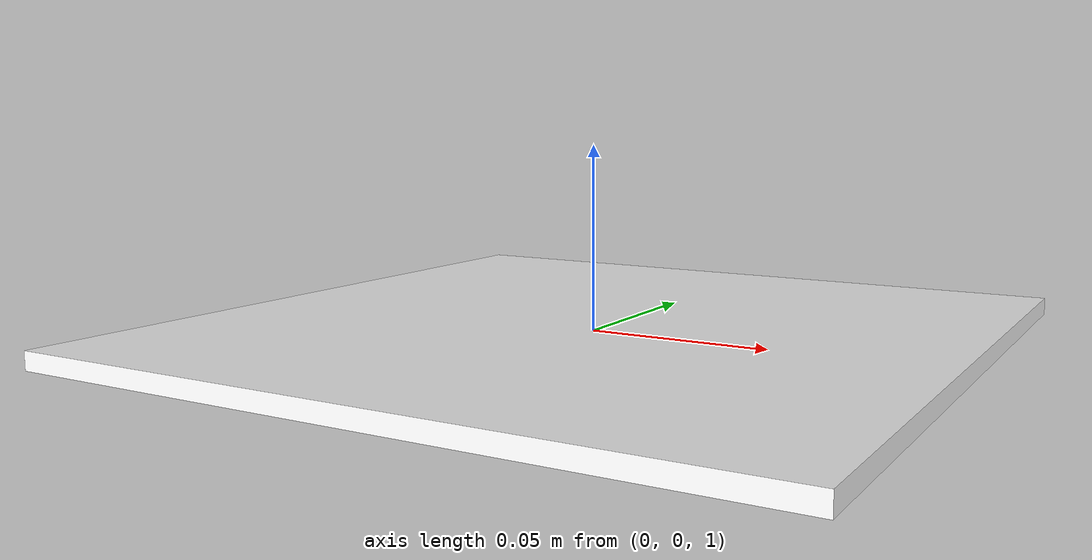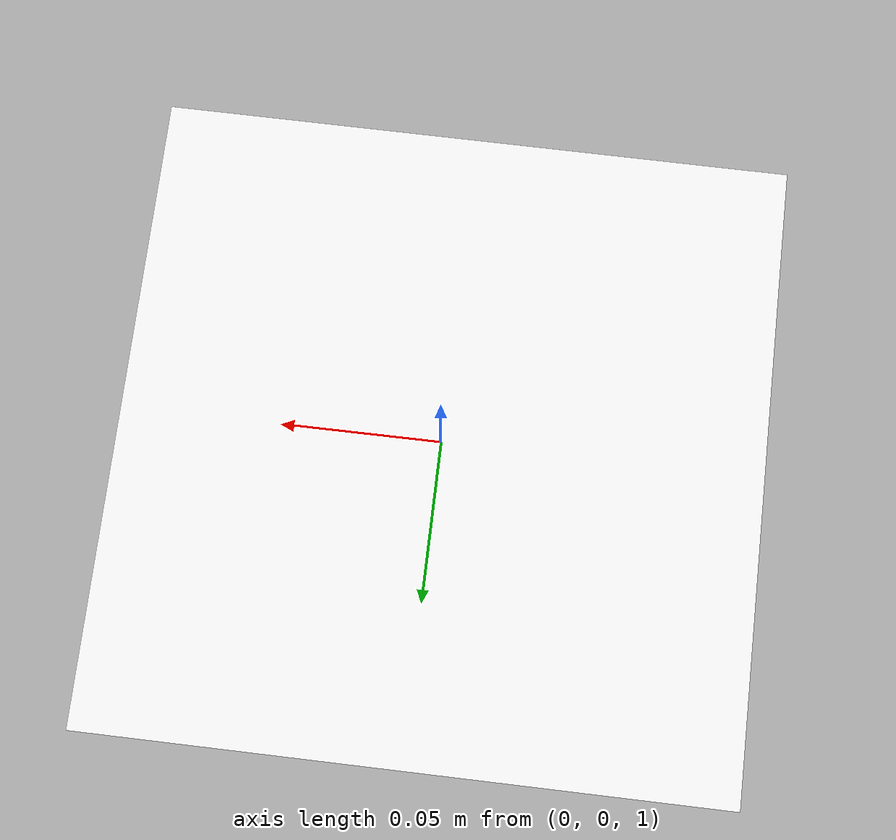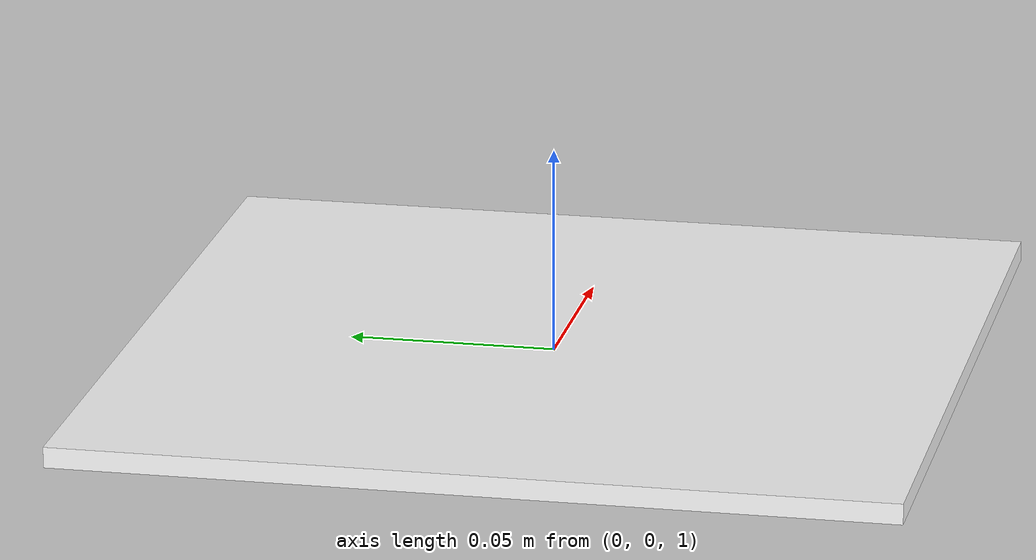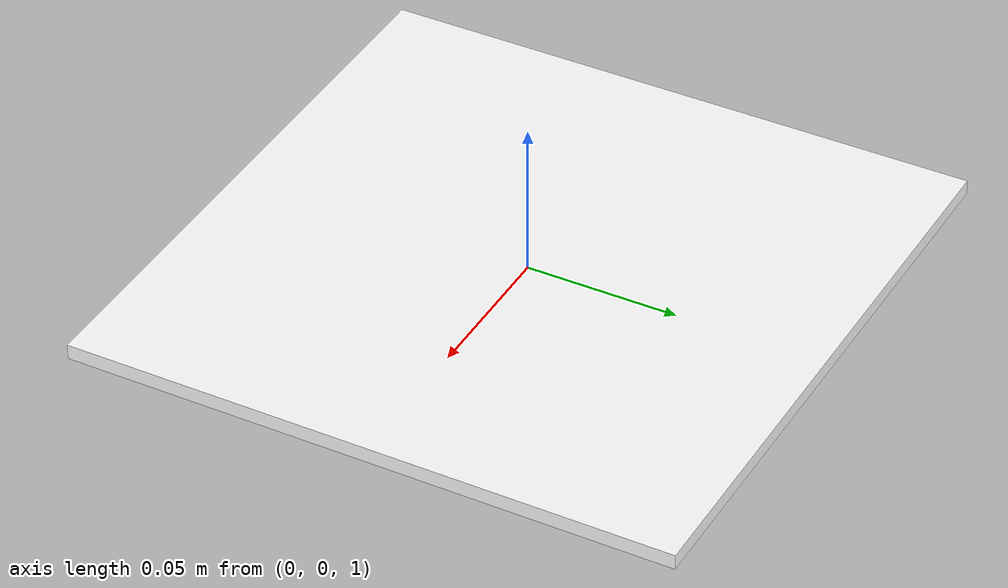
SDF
<?xml version="1.0" encoding="UTF-8"?>
<sdf version='1.9'>
  <model name='aruco_tag2'>
    <static>true</static>
    <pose>0 0 1 0 0 0</pose>
    <link name='base'>
      <visual name='base_visual'>
        <geometry>
           <box>
            <size>0.2 0.2 0.005</size>
          </box>
        </geometry>
        <material>
          <diffuse>1 1 1 1</diffuse>
          <specular>0.4 0.4 0.4 1</specular>
          <pbr>
            <metal>
              <albedo_map>aruco-18.png</albedo_map>
            </metal>
          </pbr>
        </material>
      </visual>
    </link>
  </model>
</sdf>
